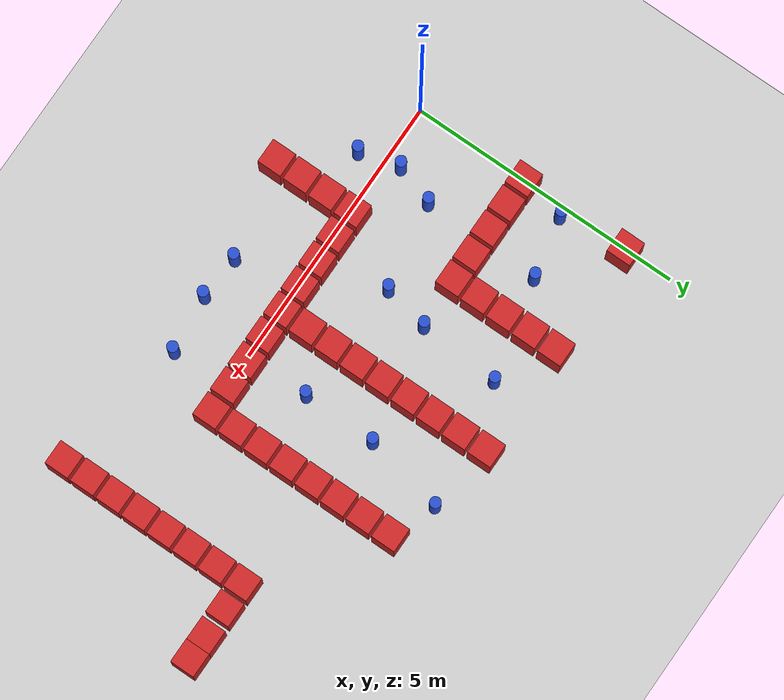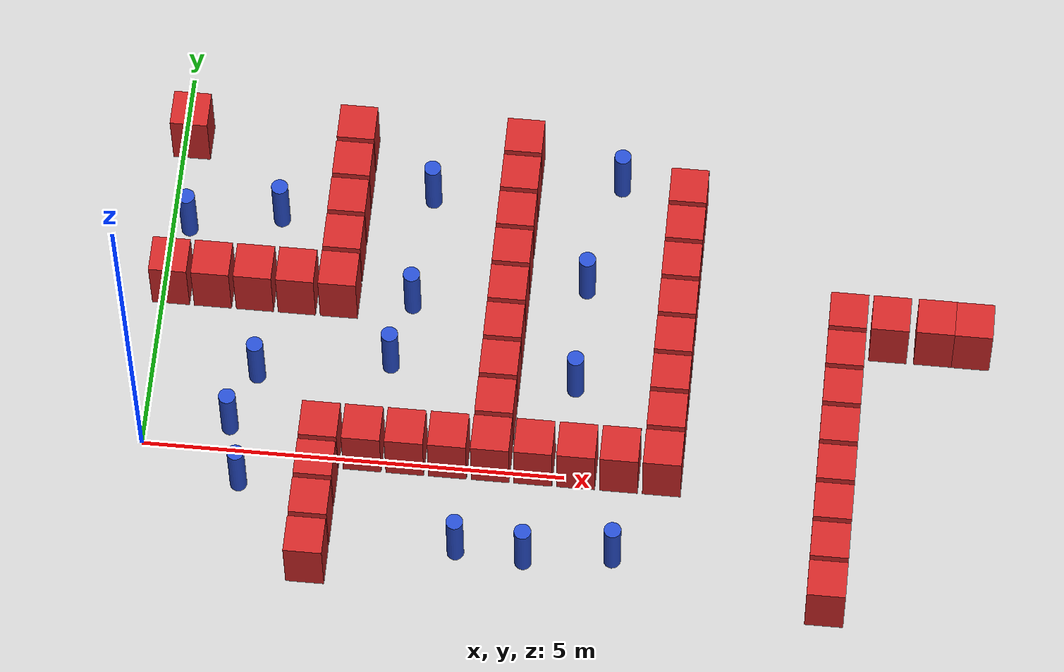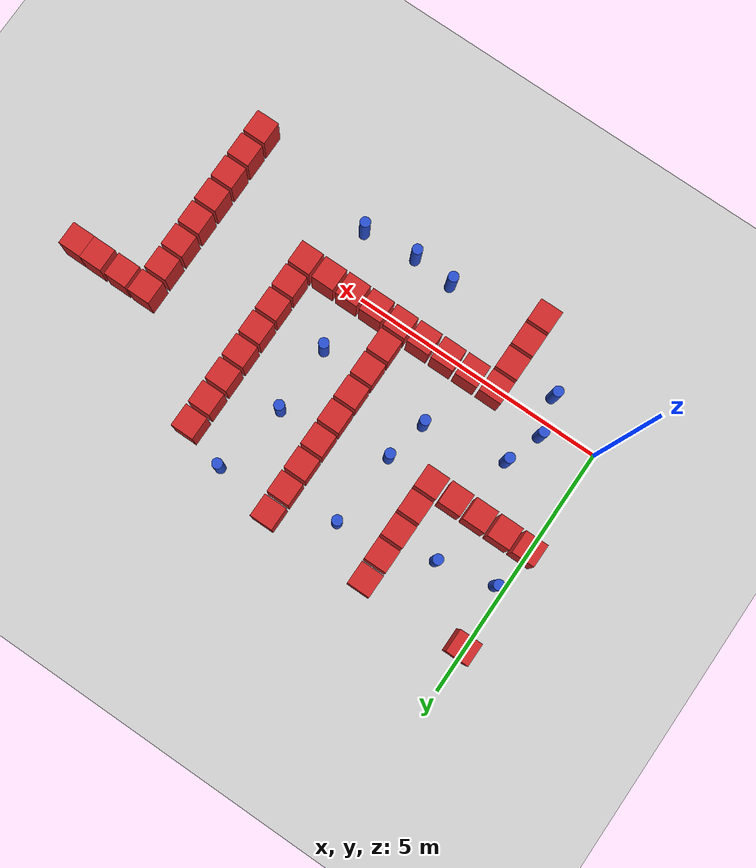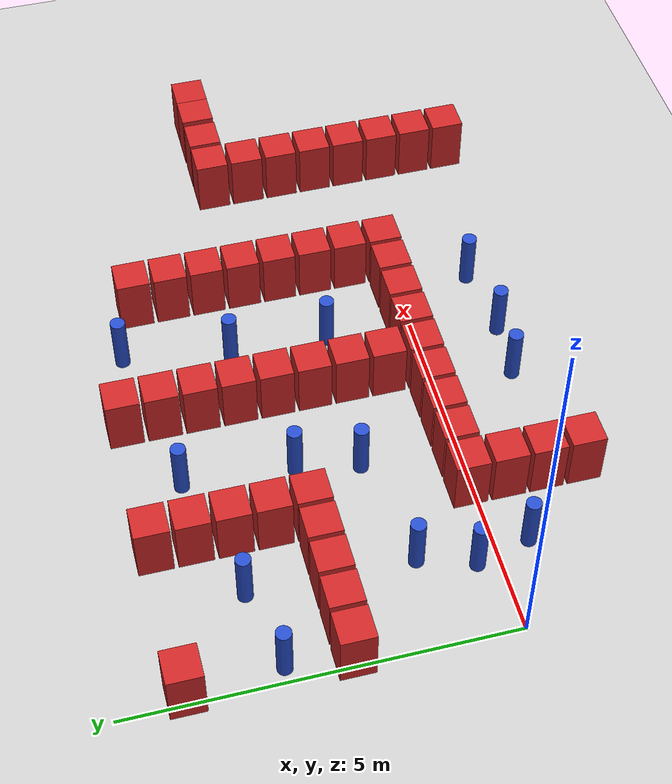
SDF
<sdf version="1.6">
 <world name="default">
  <model name="ground_plane">
   <static>1</static>
   <link name="link">
    <collision name="collision">
     <geometry><plane><normal>0 0 1</normal><size>100 100</size></plane></geometry>
     <surface><friction><ode><mu>100</mu><mu2>50</mu2></ode></friction></surface>
    </collision>
    <visual name="visual">
     <cast_shadows>0</cast_shadows>
     <geometry><plane><normal>0 0 1</normal><size>100 100</size></plane></geometry>
     <material>
      <script><uri>file://media/materials/scripts/gazebo.material</uri><name>Gazebo/Grey</name></script>
     </material>
    </visual>
   </link>
  </model>
  <model name="box_obstacle161">
   <static>0</static>
   <link name="box_obstacle">
    <pose>0 0 0.1 0 -0 0</pose>
    <inertial>
     <mass>100</mass>
     <inertia>
      <ixx>0.166667</ixx>
      <ixy>0</ixy>
      <ixz>0</ixz>
      <iyy>0.166667</iyy>
      <iyz>0</iyz>
      <izz>0.166667</izz>
     </inertia>
    </inertial>
    <collision name="collision"><geometry><box><size>0.45 0.45 0.8</size></box></geometry></collision>
    <visual name="visual">
     <geometry><box><size>0.45 0.45 0.8</size></box></geometry>
     <material>
      <script><name>Gazebo/Red</name><uri>file://media/materials/scripts/gazebo.material</uri></script>
     </material>
    </visual>
   </link>
   <pose>0.099553 2.11973 0.299997 -3e-06 5e-06 -4e-06</pose>
  </model>
  <model name="box_obstacle162">
   <static>0</static>
   <link name="box_obstacle">
    <pose>0 0 0.1 0 -0 0</pose>
    <inertial>
     <mass>100</mass>
     <inertia>
      <ixx>0.166667</ixx>
      <ixy>0</ixy>
      <ixz>0</ixz>
      <iyy>0.166667</iyy>
      <iyz>0</iyz>
      <izz>0.166667</izz>
     </inertia>
    </inertial>
    <collision name="collision"><geometry><box><size>0.45 0.45 0.8</size></box></geometry></collision>
    <visual name="visual">
     <geometry><box><size>0.45 0.45 0.8</size></box></geometry>
     <material>
      <script><name>Gazebo/Red</name><uri>file://media/materials/scripts/gazebo.material</uri></script>
     </material>
    </visual>
   </link>
   <pose>0.099553 4.13973 0.299997 -3e-06 5e-06 -4e-06</pose>
  </model>
  <model name="box_obstacle169">
   <static>0</static>
   <link name="box_obstacle">
    <pose>0 0 0.1 0 -0 0</pose>
    <inertial>
     <mass>100</mass>
     <inertia>
      <ixx>0.166667</ixx>
      <ixy>0</ixy>
      <ixz>0</ixz>
      <iyy>0.166667</iyy>
      <iyz>0</iyz>
      <izz>0.166667</izz>
     </inertia>
    </inertial>
    <collision name="collision"><geometry><box><size>0.45 0.45 0.8</size></box></geometry></collision>
    <visual name="visual">
     <geometry><box><size>0.45 0.45 0.8</size></box></geometry>
     <material>
      <script><name>Gazebo/Red</name><uri>file://media/materials/scripts/gazebo.material</uri></script>
     </material>
    </visual>
   </link>
   <pose>0.604553 2.11973 0.299997 -3e-06 5e-06 -4e-06</pose>
  </model>
  <model name="box_obstacle176">
   <static>0</static>
   <link name="box_obstacle">
    <pose>0 0 0.1 0 -0 0</pose>
    <inertial>
     <mass>100</mass>
     <inertia>
      <ixx>0.166667</ixx>
      <ixy>0</ixy>
      <ixz>0</ixz>
      <iyy>0.166667</iyy>
      <iyz>0</iyz>
      <izz>0.166667</izz>
     </inertia>
    </inertial>
    <collision name="collision"><geometry><box><size>0.45 0.45 0.8</size></box></geometry></collision>
    <visual name="visual">
     <geometry><box><size>0.45 0.45 0.8</size></box></geometry>
     <material>
      <script><name>Gazebo/Red</name><uri>file://media/materials/scripts/gazebo.material</uri></script>
     </material>
    </visual>
   </link>
   <pose>1.10955 2.11973 0.299997 -3e-06 5e-06 -4e-06</pose>
  </model>
  <model name="box_obstacle183">
   <static>0</static>
   <link name="box_obstacle">
    <pose>0 0 0.1 0 -0 0</pose>
    <inertial>
     <mass>100</mass>
     <inertia>
      <ixx>0.166667</ixx>
      <ixy>0</ixy>
      <ixz>0</ixz>
      <iyy>0.166667</iyy>
      <iyz>0</iyz>
      <izz>0.166667</izz>
     </inertia>
    </inertial>
    <collision name="collision"><geometry><box><size>0.45 0.45 0.8</size></box></geometry></collision>
    <visual name="visual">
     <geometry><box><size>0.45 0.45 0.8</size></box></geometry>
     <material>
      <script><name>Gazebo/Red</name><uri>file://media/materials/scripts/gazebo.material</uri></script>
     </material>
    </visual>
   </link>
   <pose>1.61455 2.11973 0.299997 -3e-06 5e-06 -4e-06</pose>
  </model>
  <model name="box_obstacle190">
   <static>0</static>
   <link name="box_obstacle">
    <pose>0 0 0.1 0 -0 0</pose>
    <inertial>
     <mass>100</mass>
     <inertia>
      <ixx>0.166667</ixx>
      <ixy>0</ixy>
      <ixz>0</ixz>
      <iyy>0.166667</iyy>
      <iyz>0</iyz>
      <izz>0.166667</izz>
     </inertia>
    </inertial>
    <collision name="collision"><geometry><box><size>0.45 0.45 0.8</size></box></geometry></collision>
    <visual name="visual">
     <geometry><box><size>0.45 0.45 0.8</size></box></geometry>
     <material>
      <script><name>Gazebo/Red</name><uri>file://media/materials/scripts/gazebo.material</uri></script>
     </material>
    </visual>
   </link>
   <pose>2.11955 -1.41527 0.299997 -3e-06 5e-06 -4e-06</pose>
  </model>
  <model name="box_obstacle191">
   <static>0</static>
   <link name="box_obstacle">
    <pose>0 0 0.1 0 -0 0</pose>
    <inertial>
     <mass>100</mass>
     <inertia>
      <ixx>0.166667</ixx>
      <ixy>0</ixy>
      <ixz>0</ixz>
      <iyy>0.166667</iyy>
      <iyz>0</iyz>
      <izz>0.166667</izz>
     </inertia>
    </inertial>
    <collision name="collision"><geometry><box><size>0.45 0.45 0.8</size></box></geometry></collision>
    <visual name="visual">
     <geometry><box><size>0.45 0.45 0.8</size></box></geometry>
     <material>
      <script><name>Gazebo/Red</name><uri>file://media/materials/scripts/gazebo.material</uri></script>
     </material>
    </visual>
   </link>
   <pose>2.11955 -0.910272 0.299997 -3e-06 5e-06 -4e-06</pose>
  </model>
  <model name="box_obstacle192">
   <static>0</static>
   <link name="box_obstacle">
    <pose>0 0 0.1 0 -0 0</pose>
    <inertial>
     <mass>100</mass>
     <inertia>
      <ixx>0.166667</ixx>
      <ixy>0</ixy>
      <ixz>0</ixz>
      <iyy>0.166667</iyy>
      <iyz>0</iyz>
      <izz>0.166667</izz>
     </inertia>
    </inertial>
    <collision name="collision"><geometry><box><size>0.45 0.45 0.8</size></box></geometry></collision>
    <visual name="visual">
     <geometry><box><size>0.45 0.45 0.8</size></box></geometry>
     <material>
      <script><name>Gazebo/Red</name><uri>file://media/materials/scripts/gazebo.material</uri></script>
     </material>
    </visual>
   </link>
   <pose>2.11955 -0.405272 0.299997 -3e-06 5e-06 -4e-06</pose>
  </model>
  <model name="box_obstacle193">
   <static>0</static>
   <link name="box_obstacle">
    <pose>0 0 0.1 0 -0 0</pose>
    <inertial>
     <mass>100</mass>
     <inertia>
      <ixx>0.166667</ixx>
      <ixy>0</ixy>
      <ixz>0</ixz>
      <iyy>0.166667</iyy>
      <iyz>0</iyz>
      <izz>0.166667</izz>
     </inertia>
    </inertial>
    <collision name="collision"><geometry><box><size>0.45 0.45 0.8</size></box></geometry></collision>
    <visual name="visual">
     <geometry><box><size>0.45 0.45 0.8</size></box></geometry>
     <material>
      <script><name>Gazebo/Red</name><uri>file://media/materials/scripts/gazebo.material</uri></script>
     </material>
    </visual>
   </link>
   <pose>2.11955 0.099728 0.299997 -3e-06 5e-06 -4e-06</pose>
  </model>
  <model name="box_obstacle194">
   <static>0</static>
   <link name="box_obstacle">
    <pose>0 0 0.1 0 -0 0</pose>
    <inertial>
     <mass>100</mass>
     <inertia>
      <ixx>0.166667</ixx>
      <ixy>0</ixy>
      <ixz>0</ixz>
      <iyy>0.166667</iyy>
      <iyz>0</iyz>
      <izz>0.166667</izz>
     </inertia>
    </inertial>
    <collision name="collision"><geometry><box><size>0.45 0.45 0.8</size></box></geometry></collision>
    <visual name="visual">
     <geometry><box><size>0.45 0.45 0.8</size></box></geometry>
     <material>
      <script><name>Gazebo/Red</name><uri>file://media/materials/scripts/gazebo.material</uri></script>
     </material>
    </visual>
   </link>
   <pose>2.11955 2.11973 0.299997 -3e-06 5e-06 -4e-06</pose>
  </model>
  <model name="box_obstacle195">
   <static>0</static>
   <link name="box_obstacle">
    <pose>0 0 0.1 0 -0 0</pose>
    <inertial>
     <mass>100</mass>
     <inertia>
      <ixx>0.166667</ixx>
      <ixy>0</ixy>
      <ixz>0</ixz>
      <iyy>0.166667</iyy>
      <iyz>0</iyz>
      <izz>0.166667</izz>
     </inertia>
    </inertial>
    <collision name="collision"><geometry><box><size>0.45 0.45 0.8</size></box></geometry></collision>
    <visual name="visual">
     <geometry><box><size>0.45 0.45 0.8</size></box></geometry>
     <material>
      <script><name>Gazebo/Red</name><uri>file://media/materials/scripts/gazebo.material</uri></script>
     </material>
    </visual>
   </link>
   <pose>2.11955 2.62473 0.299997 -3e-06 5e-06 -4e-06</pose>
  </model>
  <model name="box_obstacle196">
   <static>0</static>
   <link name="box_obstacle">
    <pose>0 0 0.1 0 -0 0</pose>
    <inertial>
     <mass>100</mass>
     <inertia>
      <ixx>0.166667</ixx>
      <ixy>0</ixy>
      <ixz>0</ixz>
      <iyy>0.166667</iyy>
      <iyz>0</iyz>
      <izz>0.166667</izz>
     </inertia>
    </inertial>
    <collision name="collision"><geometry><box><size>0.45 0.45 0.8</size></box></geometry></collision>
    <visual name="visual">
     <geometry><box><size>0.45 0.45 0.8</size></box></geometry>
     <material>
      <script><name>Gazebo/Red</name><uri>file://media/materials/scripts/gazebo.material</uri></script>
     </material>
    </visual>
   </link>
   <pose>2.11955 3.12973 0.299997 -3e-06 5e-06 -4e-06</pose>
  </model>
  <model name="box_obstacle197">
   <static>0</static>
   <link name="box_obstacle">
    <pose>0 0 0.1 0 -0 0</pose>
    <inertial>
     <mass>100</mass>
     <inertia>
      <ixx>0.166667</ixx>
      <ixy>0</ixy>
      <ixz>0</ixz>
      <iyy>0.166667</iyy>
      <iyz>0</iyz>
      <izz>0.166667</izz>
     </inertia>
    </inertial>
    <collision name="collision"><geometry><box><size>0.45 0.45 0.8</size></box></geometry></collision>
    <visual name="visual">
     <geometry><box><size>0.45 0.45 0.8</size></box></geometry>
     <material>
      <script><name>Gazebo/Red</name><uri>file://media/materials/scripts/gazebo.material</uri></script>
     </material>
    </visual>
   </link>
   <pose>2.11955 3.63473 0.299997 -3e-06 5e-06 -4e-06</pose>
  </model>
  <model name="box_obstacle198">
   <static>0</static>
   <link name="box_obstacle">
    <pose>0 0 0.1 0 -0 0</pose>
    <inertial>
     <mass>100</mass>
     <inertia>
      <ixx>0.166667</ixx>
      <ixy>0</ixy>
      <ixz>0</ixz>
      <iyy>0.166667</iyy>
      <iyz>0</iyz>
      <izz>0.166667</izz>
     </inertia>
    </inertial>
    <collision name="collision"><geometry><box><size>0.45 0.45 0.8</size></box></geometry></collision>
    <visual name="visual">
     <geometry><box><size>0.45 0.45 0.8</size></box></geometry>
     <material>
      <script><name>Gazebo/Red</name><uri>file://media/materials/scripts/gazebo.material</uri></script>
     </material>
    </visual>
   </link>
   <pose>2.11955 4.13973 0.299997 -3e-06 5e-06 -4e-06</pose>
  </model>
  <model name="box_obstacle209">
   <static>0</static>
   <link name="box_obstacle">
    <pose>0 0 0.1 0 -0 0</pose>
    <inertial>
     <mass>100</mass>
     <inertia>
      <ixx>0.166667</ixx>
      <ixy>0</ixy>
      <ixz>0</ixz>
      <iyy>0.166667</iyy>
      <iyz>0</iyz>
      <izz>0.166667</izz>
     </inertia>
    </inertial>
    <collision name="collision"><geometry><box><size>0.45 0.45 0.8</size></box></geometry></collision>
    <visual name="visual">
     <geometry><box><size>0.45 0.45 0.8</size></box></geometry>
     <material>
      <script><name>Gazebo/Red</name><uri>file://media/materials/scripts/gazebo.material</uri></script>
     </material>
    </visual>
   </link>
   <pose>2.62455 0.099728 0.299997 -3e-06 5e-06 -4e-06</pose>
  </model>
  <model name="box_obstacle212">
   <static>0</static>
   <link name="box_obstacle">
    <pose>0 0 0.1 0 -0 0</pose>
    <inertial>
     <mass>100</mass>
     <inertia>
      <ixx>0.166667</ixx>
      <ixy>0</ixy>
      <ixz>0</ixz>
      <iyy>0.166667</iyy>
      <iyz>0</iyz>
      <izz>0.166667</izz>
     </inertia>
    </inertial>
    <collision name="collision"><geometry><box><size>0.45 0.45 0.8</size></box></geometry></collision>
    <visual name="visual">
     <geometry><box><size>0.45 0.45 0.8</size></box></geometry>
     <material>
      <script><name>Gazebo/Red</name><uri>file://media/materials/scripts/gazebo.material</uri></script>
     </material>
    </visual>
   </link>
   <pose>3.12955 0.099728 0.299997 -3e-06 5e-06 -4e-06</pose>
  </model>
  <model name="box_obstacle215">
   <static>0</static>
   <link name="box_obstacle">
    <pose>0 0 0.1 0 -0 0</pose>
    <inertial>
     <mass>100</mass>
     <inertia>
      <ixx>0.166667</ixx>
      <ixy>0</ixy>
      <ixz>0</ixz>
      <iyy>0.166667</iyy>
      <iyz>0</iyz>
      <izz>0.166667</izz>
     </inertia>
    </inertial>
    <collision name="collision"><geometry><box><size>0.45 0.45 0.8</size></box></geometry></collision>
    <visual name="visual">
     <geometry><box><size>0.45 0.45 0.8</size></box></geometry>
     <material>
      <script><name>Gazebo/Red</name><uri>file://media/materials/scripts/gazebo.material</uri></script>
     </material>
    </visual>
   </link>
   <pose>3.63455 0.099728 0.299997 -3e-06 5e-06 -4e-06</pose>
  </model>
  <model name="box_obstacle229">
   <static>0</static>
   <link name="box_obstacle">
    <pose>0 0 0.1 0 -0 0</pose>
    <inertial>
     <mass>100</mass>
     <inertia>
      <ixx>0.166667</ixx>
      <ixy>0</ixy>
      <ixz>0</ixz>
      <iyy>0.166667</iyy>
      <iyz>0</iyz>
      <izz>0.166667</izz>
     </inertia>
    </inertial>
    <collision name="collision"><geometry><box><size>0.45 0.45 0.8</size></box></geometry></collision>
    <visual name="visual">
     <geometry><box><size>0.45 0.45 0.8</size></box></geometry>
     <material>
      <script><name>Gazebo/Red</name><uri>file://media/materials/scripts/gazebo.material</uri></script>
     </material>
    </visual>
   </link>
   <pose>4.13955 0.099728 0.299997 -3e-06 5e-06 -4e-06</pose>
  </model>
  <model name="box_obstacle230">
   <static>0</static>
   <link name="box_obstacle">
    <pose>0 0 0.1 0 -0 0</pose>
    <inertial>
     <mass>100</mass>
     <inertia>
      <ixx>0.166667</ixx>
      <ixy>0</ixy>
      <ixz>0</ixz>
      <iyy>0.166667</iyy>
      <iyz>0</iyz>
      <izz>0.166667</izz>
     </inertia>
    </inertial>
    <collision name="collision"><geometry><box><size>0.45 0.45 0.8</size></box></geometry></collision>
    <visual name="visual">
     <geometry><box><size>0.45 0.45 0.8</size></box></geometry>
     <material>
      <script><name>Gazebo/Red</name><uri>file://media/materials/scripts/gazebo.material</uri></script>
     </material>
    </visual>
   </link>
   <pose>4.13955 0.604728 0.299997 -3e-06 5e-06 -4e-06</pose>
  </model>
  <model name="box_obstacle231">
   <static>0</static>
   <link name="box_obstacle">
    <pose>0 0 0.1 0 -0 0</pose>
    <inertial>
     <mass>100</mass>
     <inertia>
      <ixx>0.166667</ixx>
      <ixy>0</ixy>
      <ixz>0</ixz>
      <iyy>0.166667</iyy>
      <iyz>0</iyz>
      <izz>0.166667</izz>
     </inertia>
    </inertial>
    <collision name="collision"><geometry><box><size>0.45 0.45 0.8</size></box></geometry></collision>
    <visual name="visual">
     <geometry><box><size>0.45 0.45 0.8</size></box></geometry>
     <material>
      <script><name>Gazebo/Red</name><uri>file://media/materials/scripts/gazebo.material</uri></script>
     </material>
    </visual>
   </link>
   <pose>4.13955 1.10973 0.299997 -3e-06 5e-06 -4e-06</pose>
  </model>
  <model name="box_obstacle232">
   <static>0</static>
   <link name="box_obstacle">
    <pose>0 0 0.1 0 -0 0</pose>
    <inertial>
     <mass>100</mass>
     <inertia>
      <ixx>0.166667</ixx>
      <ixy>0</ixy>
      <ixz>0</ixz>
      <iyy>0.166667</iyy>
      <iyz>0</iyz>
      <izz>0.166667</izz>
     </inertia>
    </inertial>
    <collision name="collision"><geometry><box><size>0.45 0.45 0.8</size></box></geometry></collision>
    <visual name="visual">
     <geometry><box><size>0.45 0.45 0.8</size></box></geometry>
     <material>
      <script><name>Gazebo/Red</name><uri>file://media/materials/scripts/gazebo.material</uri></script>
     </material>
    </visual>
   </link>
   <pose>4.13955 1.61473 0.299997 -3e-06 5e-06 -4e-06</pose>
  </model>
  <model name="box_obstacle233">
   <static>0</static>
   <link name="box_obstacle">
    <pose>0 0 0.1 0 -0 0</pose>
    <inertial>
     <mass>100</mass>
     <inertia>
      <ixx>0.166667</ixx>
      <ixy>0</ixy>
      <ixz>0</ixz>
      <iyy>0.166667</iyy>
      <iyz>0</iyz>
      <izz>0.166667</izz>
     </inertia>
    </inertial>
    <collision name="collision"><geometry><box><size>0.45 0.45 0.8</size></box></geometry></collision>
    <visual name="visual">
     <geometry><box><size>0.45 0.45 0.8</size></box></geometry>
     <material>
      <script><name>Gazebo/Red</name><uri>file://media/materials/scripts/gazebo.material</uri></script>
     </material>
    </visual>
   </link>
   <pose>4.13955 2.11973 0.299997 -3e-06 5e-06 -4e-06</pose>
  </model>
  <model name="box_obstacle234">
   <static>0</static>
   <link name="box_obstacle">
    <pose>0 0 0.1 0 -0 0</pose>
    <inertial>
     <mass>100</mass>
     <inertia>
      <ixx>0.166667</ixx>
      <ixy>0</ixy>
      <ixz>0</ixz>
      <iyy>0.166667</iyy>
      <iyz>0</iyz>
      <izz>0.166667</izz>
     </inertia>
    </inertial>
    <collision name="collision"><geometry><box><size>0.45 0.45 0.8</size></box></geometry></collision>
    <visual name="visual">
     <geometry><box><size>0.45 0.45 0.8</size></box></geometry>
     <material>
      <script><name>Gazebo/Red</name><uri>file://media/materials/scripts/gazebo.material</uri></script>
     </material>
    </visual>
   </link>
   <pose>4.13955 2.62473 0.299997 -3e-06 5e-06 -4e-06</pose>
  </model>
  <model name="box_obstacle235">
   <static>0</static>
   <link name="box_obstacle">
    <pose>0 0 0.1 0 -0 0</pose>
    <inertial>
     <mass>100</mass>
     <inertia>
      <ixx>0.166667</ixx>
      <ixy>0</ixy>
      <ixz>0</ixz>
      <iyy>0.166667</iyy>
      <iyz>0</iyz>
      <izz>0.166667</izz>
     </inertia>
    </inertial>
    <collision name="collision"><geometry><box><size>0.45 0.45 0.8</size></box></geometry></collision>
    <visual name="visual">
     <geometry><box><size>0.45 0.45 0.8</size></box></geometry>
     <material>
      <script><name>Gazebo/Red</name><uri>file://media/materials/scripts/gazebo.material</uri></script>
     </material>
    </visual>
   </link>
   <pose>4.13955 3.12973 0.299997 -3e-06 5e-06 -4e-06</pose>
  </model>
  <model name="box_obstacle236">
   <static>0</static>
   <link name="box_obstacle">
    <pose>0 0 0.1 0 -0 0</pose>
    <inertial>
     <mass>100</mass>
     <inertia>
      <ixx>0.166667</ixx>
      <ixy>0</ixy>
      <ixz>0</ixz>
      <iyy>0.166667</iyy>
      <iyz>0</iyz>
      <izz>0.166667</izz>
     </inertia>
    </inertial>
    <collision name="collision"><geometry><box><size>0.45 0.45 0.8</size></box></geometry></collision>
    <visual name="visual">
     <geometry><box><size>0.45 0.45 0.8</size></box></geometry>
     <material>
      <script><name>Gazebo/Red</name><uri>file://media/materials/scripts/gazebo.material</uri></script>
     </material>
    </visual>
   </link>
   <pose>4.13955 3.63473 0.299997 -3e-06 5e-06 -4e-06</pose>
  </model>
  <model name="box_obstacle237">
   <static>0</static>
   <link name="box_obstacle">
    <pose>0 0 0.1 0 -0 0</pose>
    <inertial>
     <mass>100</mass>
     <inertia>
      <ixx>0.166667</ixx>
      <ixy>0</ixy>
      <ixz>0</ixz>
      <iyy>0.166667</iyy>
      <iyz>0</iyz>
      <izz>0.166667</izz>
     </inertia>
    </inertial>
    <collision name="collision"><geometry><box><size>0.45 0.45 0.8</size></box></geometry></collision>
    <visual name="visual">
     <geometry><box><size>0.45 0.45 0.8</size></box></geometry>
     <material>
      <script><name>Gazebo/Red</name><uri>file://media/materials/scripts/gazebo.material</uri></script>
     </material>
    </visual>
   </link>
   <pose>4.13955 4.13973 0.299997 -3e-06 5e-06 -4e-06</pose>
  </model>
  <model name="box_obstacle248">
   <static>0</static>
   <link name="box_obstacle">
    <pose>0 0 0.1 0 -0 0</pose>
    <inertial>
     <mass>100</mass>
     <inertia>
      <ixx>0.166667</ixx>
      <ixy>0</ixy>
      <ixz>0</ixz>
      <iyy>0.166667</iyy>
      <iyz>0</iyz>
      <izz>0.166667</izz>
     </inertia>
    </inertial>
    <collision name="collision"><geometry><box><size>0.45 0.45 0.8</size></box></geometry></collision>
    <visual name="visual">
     <geometry><box><size>0.45 0.45 0.8</size></box></geometry>
     <material>
      <script><name>Gazebo/Red</name><uri>file://media/materials/scripts/gazebo.material</uri></script>
     </material>
    </visual>
   </link>
   <pose>4.64455 0.099728 0.299997 -3e-06 5e-06 -4e-06</pose>
  </model>
  <model name="box_obstacle252">
   <static>0</static>
   <link name="box_obstacle">
    <pose>0 0 0.1 0 -0 0</pose>
    <inertial>
     <mass>100</mass>
     <inertia>
      <ixx>0.166667</ixx>
      <ixy>0</ixy>
      <ixz>0</ixz>
      <iyy>0.166667</iyy>
      <iyz>0</iyz>
      <izz>0.166667</izz>
     </inertia>
    </inertial>
    <collision name="collision"><geometry><box><size>0.45 0.45 0.8</size></box></geometry></collision>
    <visual name="visual">
     <geometry><box><size>0.45 0.45 0.8</size></box></geometry>
     <material>
      <script><name>Gazebo/Red</name><uri>file://media/materials/scripts/gazebo.material</uri></script>
     </material>
    </visual>
   </link>
   <pose>5.14955 0.099728 0.299997 -3e-06 5e-06 -4e-06</pose>
  </model>
  <model name="box_obstacle256">
   <static>0</static>
   <link name="box_obstacle">
    <pose>0 0 0.1 0 -0 0</pose>
    <inertial>
     <mass>100</mass>
     <inertia>
      <ixx>0.166667</ixx>
      <ixy>0</ixy>
      <ixz>0</ixz>
      <iyy>0.166667</iyy>
      <iyz>0</iyz>
      <izz>0.166667</izz>
     </inertia>
    </inertial>
    <collision name="collision"><geometry><box><size>0.45 0.45 0.8</size></box></geometry></collision>
    <visual name="visual">
     <geometry><box><size>0.45 0.45 0.8</size></box></geometry>
     <material>
      <script><name>Gazebo/Red</name><uri>file://media/materials/scripts/gazebo.material</uri></script>
     </material>
    </visual>
   </link>
   <pose>5.65455 0.099728 0.299997 -3e-06 5e-06 -4e-06</pose>
  </model>
  <model name="box_obstacle268">
   <static>0</static>
   <link name="box_obstacle">
    <pose>0 0 0.1 0 -0 0</pose>
    <inertial>
     <mass>100</mass>
     <inertia>
      <ixx>0.166667</ixx>
      <ixy>0</ixy>
      <ixz>0</ixz>
      <iyy>0.166667</iyy>
      <iyz>0</iyz>
      <izz>0.166667</izz>
     </inertia>
    </inertial>
    <collision name="collision"><geometry><box><size>0.45 0.45 0.8</size></box></geometry></collision>
    <visual name="visual">
     <geometry><box><size>0.45 0.45 0.8</size></box></geometry>
     <material>
      <script><name>Gazebo/Red</name><uri>file://media/materials/scripts/gazebo.material</uri></script>
     </material>
    </visual>
   </link>
   <pose>6.15955 0.099728 0.299997 -3e-06 5e-06 -4e-06</pose>
  </model>
  <model name="box_obstacle269">
   <static>0</static>
   <link name="box_obstacle">
    <pose>0 0 0.1 0 -0 0</pose>
    <inertial>
     <mass>100</mass>
     <inertia>
      <ixx>0.166667</ixx>
      <ixy>0</ixy>
      <ixz>0</ixz>
      <iyy>0.166667</iyy>
      <iyz>0</iyz>
      <izz>0.166667</izz>
     </inertia>
    </inertial>
    <collision name="collision"><geometry><box><size>0.45 0.45 0.8</size></box></geometry></collision>
    <visual name="visual">
     <geometry><box><size>0.45 0.45 0.8</size></box></geometry>
     <material>
      <script><name>Gazebo/Red</name><uri>file://media/materials/scripts/gazebo.material</uri></script>
     </material>
    </visual>
   </link>
   <pose>6.15955 0.604728 0.299997 -3e-06 5e-06 -4e-06</pose>
  </model>
  <model name="box_obstacle270">
   <static>0</static>
   <link name="box_obstacle">
    <pose>0 0 0.1 0 -0 0</pose>
    <inertial>
     <mass>100</mass>
     <inertia>
      <ixx>0.166667</ixx>
      <ixy>0</ixy>
      <ixz>0</ixz>
      <iyy>0.166667</iyy>
      <iyz>0</iyz>
      <izz>0.166667</izz>
     </inertia>
    </inertial>
    <collision name="collision"><geometry><box><size>0.45 0.45 0.8</size></box></geometry></collision>
    <visual name="visual">
     <geometry><box><size>0.45 0.45 0.8</size></box></geometry>
     <material>
      <script><name>Gazebo/Red</name><uri>file://media/materials/scripts/gazebo.material</uri></script>
     </material>
    </visual>
   </link>
   <pose>6.15955 1.10973 0.299997 -3e-06 5e-06 -4e-06</pose>
  </model>
  <model name="box_obstacle271">
   <static>0</static>
   <link name="box_obstacle">
    <pose>0 0 0.1 0 -0 0</pose>
    <inertial>
     <mass>100</mass>
     <inertia>
      <ixx>0.166667</ixx>
      <ixy>0</ixy>
      <ixz>0</ixz>
      <iyy>0.166667</iyy>
      <iyz>0</iyz>
      <izz>0.166667</izz>
     </inertia>
    </inertial>
    <collision name="collision"><geometry><box><size>0.45 0.45 0.8</size></box></geometry></collision>
    <visual name="visual">
     <geometry><box><size>0.45 0.45 0.8</size></box></geometry>
     <material>
      <script><name>Gazebo/Red</name><uri>file://media/materials/scripts/gazebo.material</uri></script>
     </material>
    </visual>
   </link>
   <pose>6.15955 1.61473 0.299997 -3e-06 5e-06 -4e-06</pose>
  </model>
  <model name="box_obstacle272">
   <static>0</static>
   <link name="box_obstacle">
    <pose>0 0 0.1 0 -0 0</pose>
    <inertial>
     <mass>100</mass>
     <inertia>
      <ixx>0.166667</ixx>
      <ixy>0</ixy>
      <ixz>0</ixz>
      <iyy>0.166667</iyy>
      <iyz>0</iyz>
      <izz>0.166667</izz>
     </inertia>
    </inertial>
    <collision name="collision"><geometry><box><size>0.45 0.45 0.8</size></box></geometry></collision>
    <visual name="visual">
     <geometry><box><size>0.45 0.45 0.8</size></box></geometry>
     <material>
      <script><name>Gazebo/Red</name><uri>file://media/materials/scripts/gazebo.material</uri></script>
     </material>
    </visual>
   </link>
   <pose>6.15955 2.11973 0.299997 -3e-06 5e-06 -4e-06</pose>
  </model>
  <model name="box_obstacle273">
   <static>0</static>
   <link name="box_obstacle">
    <pose>0 0 0.1 0 -0 0</pose>
    <inertial>
     <mass>100</mass>
     <inertia>
      <ixx>0.166667</ixx>
      <ixy>0</ixy>
      <ixz>0</ixz>
      <iyy>0.166667</iyy>
      <iyz>0</iyz>
      <izz>0.166667</izz>
     </inertia>
    </inertial>
    <collision name="collision"><geometry><box><size>0.45 0.45 0.8</size></box></geometry></collision>
    <visual name="visual">
     <geometry><box><size>0.45 0.45 0.8</size></box></geometry>
     <material>
      <script><name>Gazebo/Red</name><uri>file://media/materials/scripts/gazebo.material</uri></script>
     </material>
    </visual>
   </link>
   <pose>6.15955 2.62473 0.299997 -3e-06 5e-06 -4e-06</pose>
  </model>
  <model name="box_obstacle274">
   <static>0</static>
   <link name="box_obstacle">
    <pose>0 0 0.1 0 -0 0</pose>
    <inertial>
     <mass>100</mass>
     <inertia>
      <ixx>0.166667</ixx>
      <ixy>0</ixy>
      <ixz>0</ixz>
      <iyy>0.166667</iyy>
      <iyz>0</iyz>
      <izz>0.166667</izz>
     </inertia>
    </inertial>
    <collision name="collision"><geometry><box><size>0.45 0.45 0.8</size></box></geometry></collision>
    <visual name="visual">
     <geometry><box><size>0.45 0.45 0.8</size></box></geometry>
     <material>
      <script><name>Gazebo/Red</name><uri>file://media/materials/scripts/gazebo.material</uri></script>
     </material>
    </visual>
   </link>
   <pose>6.15955 3.12973 0.299997 -3e-06 5e-06 -4e-06</pose>
  </model>
  <model name="box_obstacle275">
   <static>0</static>
   <link name="box_obstacle">
    <pose>0 0 0.1 0 -0 0</pose>
    <inertial>
     <mass>100</mass>
     <inertia>
      <ixx>0.166667</ixx>
      <ixy>0</ixy>
      <ixz>0</ixz>
      <iyy>0.166667</iyy>
      <iyz>0</iyz>
      <izz>0.166667</izz>
     </inertia>
    </inertial>
    <collision name="collision"><geometry><box><size>0.45 0.45 0.8</size></box></geometry></collision>
    <visual name="visual">
     <geometry><box><size>0.45 0.45 0.8</size></box></geometry>
     <material>
      <script><name>Gazebo/Red</name><uri>file://media/materials/scripts/gazebo.material</uri></script>
     </material>
    </visual>
   </link>
   <pose>6.15955 3.63473 0.299997 -3e-06 5e-06 -4e-06</pose>
  </model>
  <model name="cylinder_obstacle21">
   <static>0</static>
   <link name="link">
    <pose>0 0 1 0 -0 0</pose>
    <inertial>
     <mass>100</mass>
     <inertia>
      <ixx>0.166667</ixx>
      <ixy>0</ixy>
      <ixz>0</ixz>
      <iyy>0.166667</iyy>
      <iyz>0</iyz>
      <izz>0.166667</izz>
     </inertia>
    </inertial>
    <collision name="collision">
     <geometry><cylinder><radius>0.1</radius><length>0.8</length></cylinder></geometry>
    </collision>
    <visual name="visual">
     <geometry><cylinder><radius>0.1</radius><length>0.8</length></cylinder></geometry>
     <material>
      <script><name>Gazebo/Blue</name><uri>file://media/materials/scripts/gazebo.material</uri></script>
     </material>
    </visual>
   </link>
   <pose>3.08541 3.58658 -0.600002 3e-06 1e-06 0.003885</pose>
  </model>
  <model name="cylinder_obstacle33">
   <static>0</static>
   <link name="link">
    <pose>0 0 1 0 -0 0</pose>
    <inertial>
     <mass>100</mass>
     <inertia>
      <ixx>0.166667</ixx>
      <ixy>0</ixy>
      <ixz>0</ixz>
      <iyy>0.166667</iyy>
      <iyz>0</iyz>
      <izz>0.166667</izz>
     </inertia>
    </inertial>
    <collision name="collision">
     <geometry><cylinder><radius>0.1</radius><length>0.8</length></cylinder></geometry>
    </collision>
    <visual name="visual">
     <geometry><cylinder><radius>0.1</radius><length>0.8</length></cylinder></geometry>
     <material>
      <script><name>Gazebo/Blue</name><uri>file://media/materials/scripts/gazebo.material</uri></script>
     </material>
    </visual>
   </link>
   <pose>1.19698 -0.431393 -0.600002 3e-06 1e-06 0.003885</pose>
  </model>
  <model name="cylinder_obstacle34">
   <static>0</static>
   <link name="link">
    <pose>0 0 1 0 -0 0</pose>
    <inertial>
     <mass>100</mass>
     <inertia>
      <ixx>0.166667</ixx>
      <ixy>0</ixy>
      <ixz>0</ixz>
      <iyy>0.166667</iyy>
      <iyz>0</iyz>
      <izz>0.166667</izz>
     </inertia>
    </inertial>
    <collision name="collision">
     <geometry><cylinder><radius>0.1</radius><length>0.8</length></cylinder></geometry>
    </collision>
    <visual name="visual">
     <geometry><cylinder><radius>0.1</radius><length>0.8</length></cylinder></geometry>
     <material>
      <script><name>Gazebo/Blue</name><uri>file://media/materials/scripts/gazebo.material</uri></script>
     </material>
    </visual>
   </link>
   <pose>1.24868 1.01182 -0.600002 3e-06 1e-06 0.003885</pose>
  </model>
  <model name="cylinder_obstacle35">
   <static>0</static>
   <link name="link">
    <pose>0 0 1 0 -0 0</pose>
    <inertial>
     <mass>100</mass>
     <inertia>
      <ixx>0.166667</ixx>
      <ixy>0</ixy>
      <ixz>0</ixz>
      <iyy>0.166667</iyy>
      <iyz>0</iyz>
      <izz>0.166667</izz>
     </inertia>
    </inertial>
    <collision name="collision">
     <geometry><cylinder><radius>0.1</radius><length>0.8</length></cylinder></geometry>
    </collision>
    <visual name="visual">
     <geometry><cylinder><radius>0.1</radius><length>0.8</length></cylinder></geometry>
     <material>
      <script><name>Gazebo/Blue</name><uri>file://media/materials/scripts/gazebo.material</uri></script>
     </material>
    </visual>
   </link>
   <pose>5.02847 1.17811 -0.600002 3e-06 1e-06 0.003885</pose>
  </model>
  <model name="cylinder_obstacle37">
   <static>0</static>
   <link name="link">
    <pose>0 0 1 0 -0 0</pose>
    <inertial>
     <mass>100</mass>
     <inertia>
      <ixx>0.166667</ixx>
      <ixy>0</ixy>
      <ixz>0</ixz>
      <iyy>0.166667</iyy>
      <iyz>0</iyz>
      <izz>0.166667</izz>
     </inertia>
    </inertial>
    <collision name="collision">
     <geometry><cylinder><radius>0.1</radius><length>0.8</length></cylinder></geometry>
    </collision>
    <visual name="visual">
     <geometry><cylinder><radius>0.1</radius><length>0.8</length></cylinder></geometry>
     <material>
      <script><name>Gazebo/Blue</name><uri>file://media/materials/scripts/gazebo.material</uri></script>
     </material>
    </visual>
   </link>
   <pose>2.98718 2.12026 -0.600002 3e-06 1e-06 0.003885</pose>
  </model>
  <model name="cylinder_obstacle41">
   <static>0</static>
   <link name="link">
    <pose>0 0 1 0 -0 0</pose>
    <inertial>
     <mass>100</mass>
     <inertia>
      <ixx>0.166667</ixx>
      <ixy>0</ixy>
      <ixz>0</ixz>
      <iyy>0.166667</iyy>
      <iyz>0</iyz>
      <izz>0.166667</izz>
     </inertia>
    </inertial>
    <collision name="collision">
     <geometry><cylinder><radius>0.1</radius><length>0.8</length></cylinder></geometry>
    </collision>
    <visual name="visual">
     <geometry><cylinder><radius>0.1</radius><length>0.8</length></cylinder></geometry>
     <material>
      <script><name>Gazebo/Blue</name><uri>file://media/materials/scripts/gazebo.material</uri></script>
     </material>
    </visual>
   </link>
   <pose>2.81435 1.29343 -0.600002 3e-06 1e-06 0.003885</pose>
  </model>
  <model name="cylinder_obstacle46">
   <static>0</static>
   <link name="link">
    <pose>0 0 1 0 -0 0</pose>
    <inertial>
     <mass>100</mass>
     <inertia>
      <ixx>0.166667</ixx>
      <ixy>0</ixy>
      <ixz>0</ixz>
      <iyy>0.166667</iyy>
      <iyz>0</iyz>
      <izz>0.166667</izz>
     </inertia>
    </inertial>
    <collision name="collision">
     <geometry><cylinder><radius>0.1</radius><length>0.8</length></cylinder></geometry>
    </collision>
    <visual name="visual">
     <geometry><cylinder><radius>0.1</radius><length>0.8</length></cylinder></geometry>
     <material>
      <script><name>Gazebo/Blue</name><uri>file://media/materials/scripts/gazebo.material</uri></script>
     </material>
    </visual>
   </link>
   <pose>5.33881 3.95376 -0.600002 3e-06 1e-06 0.003885</pose>
  </model>
  <model name="cylinder_obstacle50">
   <static>0</static>
   <link name="link">
    <pose>0 0 1 0 -0 0</pose>
    <inertial>
     <mass>100</mass>
     <inertia>
      <ixx>0.166667</ixx>
      <ixy>0</ixy>
      <ixz>0</ixz>
      <iyy>0.166667</iyy>
      <iyz>0</iyz>
      <izz>0.166667</izz>
     </inertia>
    </inertial>
    <collision name="collision">
     <geometry><cylinder><radius>0.1</radius><length>0.8</length></cylinder></geometry>
    </collision>
    <visual name="visual">
     <geometry><cylinder><radius>0.1</radius><length>0.8</length></cylinder></geometry>
     <material>
      <script><name>Gazebo/Blue</name><uri>file://media/materials/scripts/gazebo.material</uri></script>
     </material>
    </visual>
   </link>
   <pose>4.62611 -1.1429 -0.600002 3e-06 1e-06 0.003885</pose>
  </model>
  <model name="cylinder_obstacle58">
   <static>0</static>
   <link name="link">
    <pose>0 0 1 0 -0 0</pose>
    <inertial>
     <mass>100</mass>
     <inertia>
      <ixx>0.166667</ixx>
      <ixy>0</ixy>
      <ixz>0</ixz>
      <iyy>0.166667</iyy>
      <iyz>0</iyz>
      <izz>0.166667</izz>
     </inertia>
    </inertial>
    <collision name="collision">
     <geometry><cylinder><radius>0.1</radius><length>0.8</length></cylinder></geometry>
    </collision>
    <visual name="visual">
     <geometry><cylinder><radius>0.1</radius><length>0.8</length></cylinder></geometry>
     <material>
      <script><name>Gazebo/Blue</name><uri>file://media/materials/scripts/gazebo.material</uri></script>
     </material>
    </visual>
   </link>
   <pose>0.198763 2.92943 -0.600002 3e-06 1e-06 0.003885</pose>
  </model>
  <model name="box_obstacle304">
   <static>0</static>
   <link name="box_obstacle">
    <pose>0 0 0.1 0 -0 0</pose>
    <inertial>
     <mass>100</mass>
     <inertia>
      <ixx>0.166667</ixx>
      <ixy>0</ixy>
      <ixz>0</ixz>
      <iyy>0.166667</iyy>
      <iyz>0</iyz>
      <izz>0.166667</izz>
     </inertia>
    </inertial>
    <collision name="collision"><geometry><box><size>0.45 0.45 0.8</size></box></geometry></collision>
    <visual name="visual">
     <geometry><box><size>0.45 0.45 0.8</size></box></geometry>
     <material>
      <script><name>Gazebo/Red</name><uri>file://media/materials/scripts/gazebo.material</uri></script>
     </material>
    </visual>
   </link>
   <pose>8.17955 -1.41527 0.299997 -3e-06 5e-06 -4e-06</pose>
  </model>
  <model name="box_obstacle305">
   <static>0</static>
   <link name="box_obstacle">
    <pose>0 0 0.1 0 -0 0</pose>
    <inertial>
     <mass>100</mass>
     <inertia>
      <ixx>0.166667</ixx>
      <ixy>0</ixy>
      <ixz>0</ixz>
      <iyy>0.166667</iyy>
      <iyz>0</iyz>
      <izz>0.166667</izz>
     </inertia>
    </inertial>
    <collision name="collision"><geometry><box><size>0.45 0.45 0.8</size></box></geometry></collision>
    <visual name="visual">
     <geometry><box><size>0.45 0.45 0.8</size></box></geometry>
     <material>
      <script><name>Gazebo/Red</name><uri>file://media/materials/scripts/gazebo.material</uri></script>
     </material>
    </visual>
   </link>
   <pose>8.17955 -0.910272 0.299997 -3e-06 5e-06 -4e-06</pose>
  </model>
  <model name="box_obstacle306">
   <static>0</static>
   <link name="box_obstacle">
    <pose>0 0 0.1 0 -0 0</pose>
    <inertial>
     <mass>100</mass>
     <inertia>
      <ixx>0.166667</ixx>
      <ixy>0</ixy>
      <ixz>0</ixz>
      <iyy>0.166667</iyy>
      <iyz>0</iyz>
      <izz>0.166667</izz>
     </inertia>
    </inertial>
    <collision name="collision"><geometry><box><size>0.45 0.45 0.8</size></box></geometry></collision>
    <visual name="visual">
     <geometry><box><size>0.45 0.45 0.8</size></box></geometry>
     <material>
      <script><name>Gazebo/Red</name><uri>file://media/materials/scripts/gazebo.material</uri></script>
     </material>
    </visual>
   </link>
   <pose>8.17955 -0.405272 0.299997 -3e-06 5e-06 -4e-06</pose>
  </model>
  <model name="box_obstacle307">
   <static>0</static>
   <link name="box_obstacle">
    <pose>0 0 0.1 0 -0 0</pose>
    <inertial>
     <mass>100</mass>
     <inertia>
      <ixx>0.166667</ixx>
      <ixy>0</ixy>
      <ixz>0</ixz>
      <iyy>0.166667</iyy>
      <iyz>0</iyz>
      <izz>0.166667</izz>
     </inertia>
    </inertial>
    <collision name="collision"><geometry><box><size>0.45 0.45 0.8</size></box></geometry></collision>
    <visual name="visual">
     <geometry><box><size>0.45 0.45 0.8</size></box></geometry>
     <material>
      <script><name>Gazebo/Red</name><uri>file://media/materials/scripts/gazebo.material</uri></script>
     </material>
    </visual>
   </link>
   <pose>8.17955 0.099728 0.299997 -3e-06 5e-06 -4e-06</pose>
  </model>
  <model name="box_obstacle308">
   <static>0</static>
   <link name="box_obstacle">
    <pose>0 0 0.1 0 -0 0</pose>
    <inertial>
     <mass>100</mass>
     <inertia>
      <ixx>0.166667</ixx>
      <ixy>0</ixy>
      <ixz>0</ixz>
      <iyy>0.166667</iyy>
      <iyz>0</iyz>
      <izz>0.166667</izz>
     </inertia>
    </inertial>
    <collision name="collision"><geometry><box><size>0.45 0.45 0.8</size></box></geometry></collision>
    <visual name="visual">
     <geometry><box><size>0.45 0.45 0.8</size></box></geometry>
     <material>
      <script><name>Gazebo/Red</name><uri>file://media/materials/scripts/gazebo.material</uri></script>
     </material>
    </visual>
   </link>
   <pose>8.17955 0.604728 0.299997 -3e-06 5e-06 -4e-06</pose>
  </model>
  <model name="box_obstacle309">
   <static>0</static>
   <link name="box_obstacle">
    <pose>0 0 0.1 0 -0 0</pose>
    <inertial>
     <mass>100</mass>
     <inertia>
      <ixx>0.166667</ixx>
      <ixy>0</ixy>
      <ixz>0</ixz>
      <iyy>0.166667</iyy>
      <iyz>0</iyz>
      <izz>0.166667</izz>
     </inertia>
    </inertial>
    <collision name="collision"><geometry><box><size>0.45 0.45 0.8</size></box></geometry></collision>
    <visual name="visual">
     <geometry><box><size>0.45 0.45 0.8</size></box></geometry>
     <material>
      <script><name>Gazebo/Red</name><uri>file://media/materials/scripts/gazebo.material</uri></script>
     </material>
    </visual>
   </link>
   <pose>8.17955 1.10973 0.299997 -3e-06 5e-06 -4e-06</pose>
  </model>
  <model name="box_obstacle310">
   <static>0</static>
   <link name="box_obstacle">
    <pose>0 0 0.1 0 -0 0</pose>
    <inertial>
     <mass>100</mass>
     <inertia>
      <ixx>0.166667</ixx>
      <ixy>0</ixy>
      <ixz>0</ixz>
      <iyy>0.166667</iyy>
      <iyz>0</iyz>
      <izz>0.166667</izz>
     </inertia>
    </inertial>
    <collision name="collision"><geometry><box><size>0.45 0.45 0.8</size></box></geometry></collision>
    <visual name="visual">
     <geometry><box><size>0.45 0.45 0.8</size></box></geometry>
     <material>
      <script><name>Gazebo/Red</name><uri>file://media/materials/scripts/gazebo.material</uri></script>
     </material>
    </visual>
   </link>
   <pose>8.17955 1.61473 0.299997 -3e-06 5e-06 -4e-06</pose>
  </model>
  <model name="box_obstacle311">
   <static>0</static>
   <link name="box_obstacle">
    <pose>0 0 0.1 0 -0 0</pose>
    <inertial>
     <mass>100</mass>
     <inertia>
      <ixx>0.166667</ixx>
      <ixy>0</ixy>
      <ixz>0</ixz>
      <iyy>0.166667</iyy>
      <iyz>0</iyz>
      <izz>0.166667</izz>
     </inertia>
    </inertial>
    <collision name="collision"><geometry><box><size>0.45 0.45 0.8</size></box></geometry></collision>
    <visual name="visual">
     <geometry><box><size>0.45 0.45 0.8</size></box></geometry>
     <material>
      <script><name>Gazebo/Red</name><uri>file://media/materials/scripts/gazebo.material</uri></script>
     </material>
    </visual>
   </link>
   <pose>8.17955 2.11973 0.299997 -3e-06 5e-06 -4e-06</pose>
  </model>
  <model name="box_obstacle318">
   <static>0</static>
   <link name="box_obstacle">
    <pose>0 0 0.1 0 -0 0</pose>
    <inertial>
     <mass>100</mass>
     <inertia>
      <ixx>0.166667</ixx>
      <ixy>0</ixy>
      <ixz>0</ixz>
      <iyy>0.166667</iyy>
      <iyz>0</iyz>
      <izz>0.166667</izz>
     </inertia>
    </inertial>
    <collision name="collision"><geometry><box><size>0.45 0.45 0.8</size></box></geometry></collision>
    <visual name="visual">
     <geometry><box><size>0.45 0.45 0.8</size></box></geometry>
     <material>
      <script><name>Gazebo/Red</name><uri>file://media/materials/scripts/gazebo.material</uri></script>
     </material>
    </visual>
   </link>
   <pose>8.68455 2.11973 0.299997 -3e-06 5e-06 -4e-06</pose>
  </model>
  <model name="box_obstacle320">
   <static>0</static>
   <link name="box_obstacle">
    <pose>0 0 0.1 0 -0 0</pose>
    <inertial>
     <mass>100</mass>
     <inertia>
      <ixx>0.166667</ixx>
      <ixy>0</ixy>
      <ixz>0</ixz>
      <iyy>0.166667</iyy>
      <iyz>0</iyz>
      <izz>0.166667</izz>
     </inertia>
    </inertial>
    <collision name="collision"><geometry><box><size>0.45 0.45 0.8</size></box></geometry></collision>
    <visual name="visual">
     <geometry><box><size>0.45 0.45 0.8</size></box></geometry>
     <material>
      <script><name>Gazebo/Red</name><uri>file://media/materials/scripts/gazebo.material</uri></script>
     </material>
    </visual>
   </link>
   <pose>9.21948 2.12128 0.299998 -6e-06 5e-06 -9.8e-05</pose>
  </model>
  <model name="box_obstacle322">
   <static>0</static>
   <link name="box_obstacle">
    <pose>0 0 0.1 0 -0 0</pose>
    <inertial>
     <mass>100</mass>
     <inertia>
      <ixx>0.166667</ixx>
      <ixy>0</ixy>
      <ixz>0</ixz>
      <iyy>0.166667</iyy>
      <iyz>0</iyz>
      <izz>0.166667</izz>
     </inertia>
    </inertial>
    <collision name="collision"><geometry><box><size>0.45 0.45 0.8</size></box></geometry></collision>
    <visual name="visual">
     <geometry><box><size>0.45 0.45 0.8</size></box></geometry>
     <material>
      <script><name>Gazebo/Red</name><uri>file://media/materials/scripts/gazebo.material</uri></script>
     </material>
    </visual>
   </link>
   <pose>9.6695 2.11877 0.3 -1.1e-05 5e-06 -4.6e-05</pose>
  </model>
  <model name="cylinder_obstacle84">
   <static>0</static>
   <link name="link">
    <pose>0 0 1 0 -0 0</pose>
    <inertial>
     <mass>100</mass>
     <inertia>
      <ixx>0.166667</ixx>
      <ixy>0</ixy>
      <ixz>0</ixz>
      <iyy>0.166667</iyy>
      <iyz>0</iyz>
      <izz>0.166667</izz>
     </inertia>
    </inertial>
    <collision name="collision">
     <geometry><cylinder><radius>0.1</radius><length>0.8</length></cylinder></geometry>
    </collision>
    <visual name="visual">
     <geometry><cylinder><radius>0.1</radius><length>0.8</length></cylinder></geometry>
     <material>
      <script><name>Gazebo/Blue</name><uri>file://media/materials/scripts/gazebo.material</uri></script>
     </material>
    </visual>
   </link>
   <pose>5.66111 -1.02594 -0.600002 3e-06 1e-06 0.003885</pose>
  </model>
  <model name="cylinder_obstacle86">
   <static>0</static>
   <link name="link">
    <pose>0 0 1 0 -0 0</pose>
    <inertial>
     <mass>100</mass>
     <inertia>
      <ixx>0.166667</ixx>
      <ixy>0</ixy>
      <ixz>0</ixz>
      <iyy>0.166667</iyy>
      <iyz>0</iyz>
      <izz>0.166667</izz>
     </inertia>
    </inertial>
    <collision name="collision">
     <geometry><cylinder><radius>0.1</radius><length>0.8</length></cylinder></geometry>
    </collision>
    <visual name="visual">
     <geometry><cylinder><radius>0.1</radius><length>0.8</length></cylinder></geometry>
     <material>
      <script><name>Gazebo/Blue</name><uri>file://media/materials/scripts/gazebo.material</uri></script>
     </material>
    </visual>
   </link>
   <pose>1.2922 3.15998 -0.600002 3e-06 1e-06 0.003885</pose>
  </model>
  <model name="cylinder_obstacle92">
   <static>0</static>
   <link name="link">
    <pose>0 0 1 0 -0 0</pose>
    <inertial>
     <mass>100</mass>
     <inertia>
      <ixx>0.166667</ixx>
      <ixy>0</ixy>
      <ixz>0</ixz>
      <iyy>0.166667</iyy>
      <iyz>0</iyz>
      <izz>0.166667</izz>
     </inertia>
    </inertial>
    <collision name="collision">
     <geometry><cylinder><radius>0.1</radius><length>0.8</length></cylinder></geometry>
    </collision>
    <visual name="visual">
     <geometry><cylinder><radius>0.1</radius><length>0.8</length></cylinder></geometry>
     <material>
      <script><name>Gazebo/Blue</name><uri>file://media/materials/scripts/gazebo.material</uri></script>
     </material>
    </visual>
   </link>
   <pose>3.82897 -1.09109 -0.600002 3e-06 1e-06 0.003885</pose>
  </model>
  <model name="cylinder_obstacle96">
   <static>0</static>
   <link name="link">
    <pose>0 0 1 0 -0 0</pose>
    <inertial>
     <mass>100</mass>
     <inertia>
      <ixx>0.166667</ixx>
      <ixy>0</ixy>
      <ixz>0</ixz>
      <iyy>0.166667</iyy>
      <iyz>0</iyz>
      <izz>0.166667</izz>
     </inertia>
    </inertial>
    <collision name="collision">
     <geometry><cylinder><radius>0.1</radius><length>0.8</length></cylinder></geometry>
    </collision>
    <visual name="visual">
     <geometry><cylinder><radius>0.1</radius><length>0.8</length></cylinder></geometry>
     <material>
      <script><name>Gazebo/Blue</name><uri>file://media/materials/scripts/gazebo.material</uri></script>
     </material>
    </visual>
   </link>
   <pose>5.04387 2.5134 -0.600002 3e-06 1e-06 0.003885</pose>
  </model>
  <model name="cylinder_obstacle103">
   <static>0</static>
   <link name="link">
    <pose>0 0 1 0 -0 0</pose>
    <inertial>
     <mass>100</mass>
     <inertia>
      <ixx>0.166667</ixx>
      <ixy>0</ixy>
      <ixz>0</ixz>
      <iyy>0.166667</iyy>
      <iyz>0</iyz>
      <izz>0.166667</izz>
     </inertia>
    </inertial>
    <collision name="collision">
     <geometry><cylinder><radius>0.1</radius><length>0.8</length></cylinder></geometry>
    </collision>
    <visual name="visual">
     <geometry><cylinder><radius>0.1</radius><length>0.8</length></cylinder></geometry>
     <material>
      <script><name>Gazebo/Blue</name><uri>file://media/materials/scripts/gazebo.material</uri></script>
     </material>
    </visual>
   </link>
   <pose>1.00874 0.296708 -0.600002 3e-06 1e-06 0.003885</pose>
  </model>
 </world>
</sdf>
